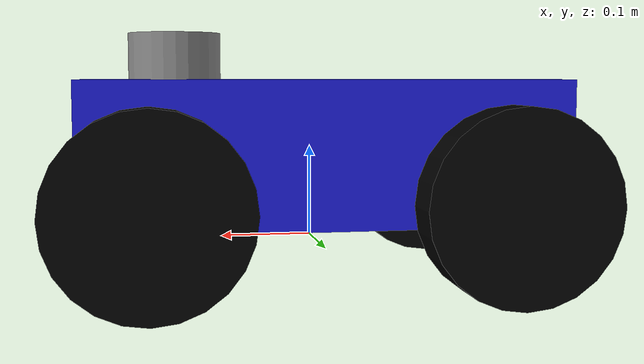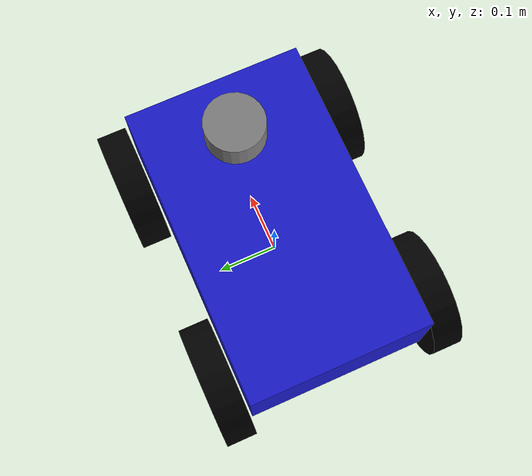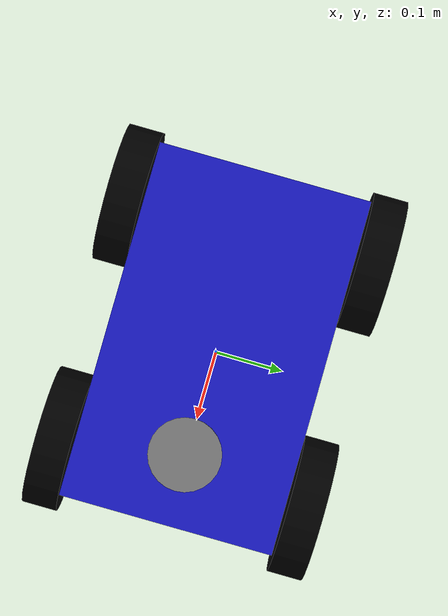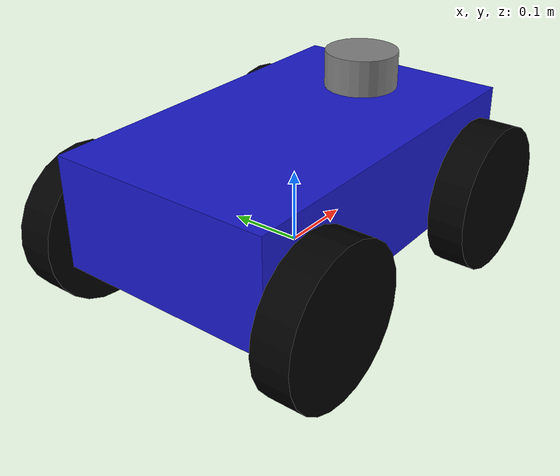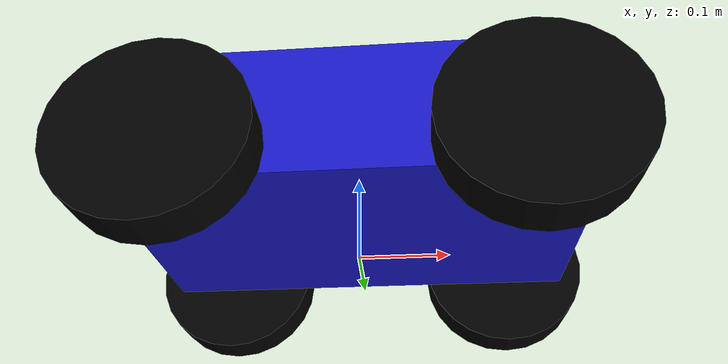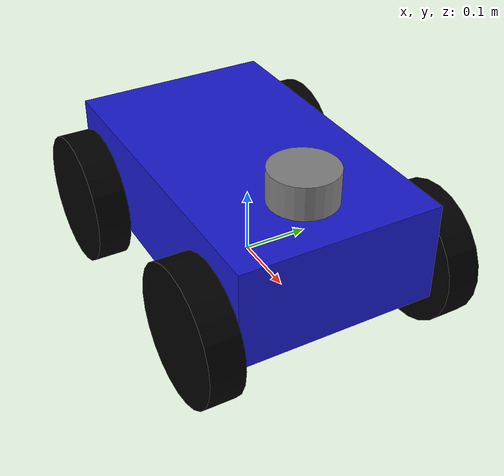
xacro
<?xml version="1.0"?>
<robot xmlns:xacro="http://www.ros.org/wiki/xacro" name="hambot">

  <!-- 1. MATERIALS & INERTIAL MACROS             -->
  <material name="blue"><color rgba="0.1 0.1 0.8 1.0"/></material>
  <material name="black"><color rgba="0.0 0.0 0.0 1.0"/></material>
  <material name="grey"><color rgba="0.5 0.5 0.5 1.0"/></material>

  <xacro:macro name="box_inertia" params="m w h d">
    <inertial>
      <mass value="${m}"/>
      <inertia ixx="${(m/12) * (h*h + d*d)}" ixy="0.0" ixz="0.0"
               iyy="${(m/12) * (w*w + d*d)}" iyz="0.0"
               izz="${(m/12) * (w*w + h*h)}"/>
    </inertial>
  </xacro:macro>

  <xacro:macro name="cylinder_inertia" params="m r h">
    <inertial>
      <mass value="${m}"/>
      <inertia ixx="${(m/12) * (3*r*r + h*h)}" ixy="0.0" ixz="0.0"
               iyy="${(m/12) * (3*r*r + h*h)}" iyz="0.0"
               izz="${(m/2) * (r*r)}"/>
    </inertial>
  </xacro:macro>

  <!-- 2. ROBOT BASE CHASSIS                      -->
  <link name="base_footprint"/>

  <joint name="base_footprint_joint" type="fixed">
    <parent link="base_footprint"/>
    <child link="base_link"/>
    <origin xyz="0 0 0.1" rpy="0 0 0"/>
  </joint>

  <link name="base_link">
    <visual>
      <geometry><box size="0.5 0.3 0.15"/></geometry>
      <material name="blue"/>
    </visual>
    <collision>
      <geometry><box size="0.5 0.3 0.15"/></geometry>
    </collision>
    <xacro:box_inertia m="5.0" w="0.5" h="0.3" d="0.15"/>
  </link>

  <!-- 3. WHEELS (4-Wheel Diff Drive)             -->
  <xacro:macro name="wheel" params="prefix x_reflect y_reflect">
    <joint name="${prefix}_wheel_joint" type="continuous">
      <parent link="base_link"/>
      <child link="${prefix}_wheel"/>
      <origin xyz="${x_reflect*0.18} ${y_reflect*0.18} -0.05" rpy="${-pi/2} 0 0"/>
      <axis xyz="0 0 1"/>
    </joint>

    <link name="${prefix}_wheel">
      <visual>
        <geometry><cylinder radius="0.1" length="0.05"/></geometry>
        <material name="black"/>
      </visual>
      <collision>
        <geometry><cylinder radius="0.1" length="0.05"/></geometry>
      </collision>
      <xacro:cylinder_inertia m="0.5" r="0.1" h="0.05"/>
    </link>
  </xacro:macro>

  <xacro:wheel prefix="front_left"  x_reflect="1"  y_reflect="1" />
  <xacro:wheel prefix="front_right" x_reflect="1"  y_reflect="-1" />
  <xacro:wheel prefix="rear_left"   x_reflect="-1" y_reflect="1" />
  <xacro:wheel prefix="rear_right"  x_reflect="-1" y_reflect="-1" />

  <!-- 4. SIMULATED SENSORS                       -->

  <!-- LiDAR Frame & Gazebo Sensor -->
  <link name="laser_frame">
    <visual>
      <geometry><cylinder radius="0.05" length="0.05"/></geometry>
      <material name="grey"/>
    </visual>
    <xacro:cylinder_inertia m="0.1" r="0.05" h="0.05"/>
  </link>

  <joint name="laser_joint" type="fixed">
    <parent link="base_link"/>
    <child link="laser_frame"/>
    <origin xyz="0.15 0 0.1" rpy="0 0 0"/>
  </joint>

  <gazebo reference="laser_frame">
    <sensor name="gpu_lidar" type="gpu_lidar">
      <pose>0 0 0 0 0 0</pose>
      <topic>scan</topic>
      <update_rate>10</update_rate>
      <ray>
        <scan>
          <horizontal>
            <samples>640</samples>
            <resolution>1</resolution>
            <min_angle>-3.14159</min_angle>
            <max_angle>3.14159</max_angle>
          </horizontal>
        </scan>
        <range>
          <min>0.12</min>
          <max>12.0</max>
          <resolution>0.01</resolution>
        </range>
      </ray>
      <always_on>1</always_on>
      <visualize>true</visualize>
    </sensor>
  </gazebo>

  <!-- OAK-D Lite Depth Camera Frame & Gazebo Sensor -->
  <link name="oak_d_lite_frame">
    <visual>
      <geometry><box size="0.02 0.1 0.03"/></geometry>
      <material name="black"/>
    </visual>
    <xacro:box_inertia m="0.05" w="0.02" h="0.1" d="0.03"/>
  </link>

  <joint name="camera_joint" type="fixed">
    <parent link="base_link"/>
    <child link="oak_d_lite_frame"/>
    <origin xyz="0.23 0 0.03" rpy="0 0 0"/>
  </joint>

  <gazebo reference="oak_d_lite_frame">
    <sensor name="camera" type="rgbd_camera">
      <pose>0 0 0 0 0 0</pose>
      <topic>camera</topic>
      <update_rate>5</update_rate> <!-- lowerd this to 5 for performance can change to 30 for real comparisons -->
      <camera>
        <horizontal_fov>1.274</horizontal_fov>
        <image>
          <width>640</width>
          <height>480</height>
          <format>R8G8B8</format>
        </image>
        <clip>
          <near>0.1</near>
          <far>10.0</far>
        </clip>
      </camera>
      <always_on>1</always_on>
    </sensor>
  </gazebo>

  <!-- 5. GAZEBO DIFF DRIVE SYSTEMS PLUGIN        -->
  <gazebo>
    <plugin filename="ignition-gazebo-diff-drive-system" name="ignition::gazebo::systems::DiffDrive">
      <left_joint>front_left_wheel_joint</left_joint>
      <left_joint>rear_left_wheel_joint</left_joint>
      <right_joint>front_right_wheel_joint</right_joint>
      <right_joint>rear_right_wheel_joint</right_joint>
      <wheel_separation>0.36</wheel_separation>
      <wheel_radius>0.1</wheel_radius>
      <odom_publish_frequency>30</odom_publish_frequency>
      <topic>cmd_vel</topic>
      <odom_topic>odom</odom_topic>
      <tf_topic>tf</tf_topic>
      <frame_id>odom</frame_id>
      <child_frame_id>base_footprint</child_frame_id>
    </plugin>

    <!-- Essential plugin to publish all moving joint positions to ROS 2 -->
    <plugin filename="ignition-gazebo-joint-state-publisher-system" name="ignition::gazebo::systems::JointStatePublisher">
      <topic>joint_states</topic>
    </plugin>
  </gazebo>

</robot>
